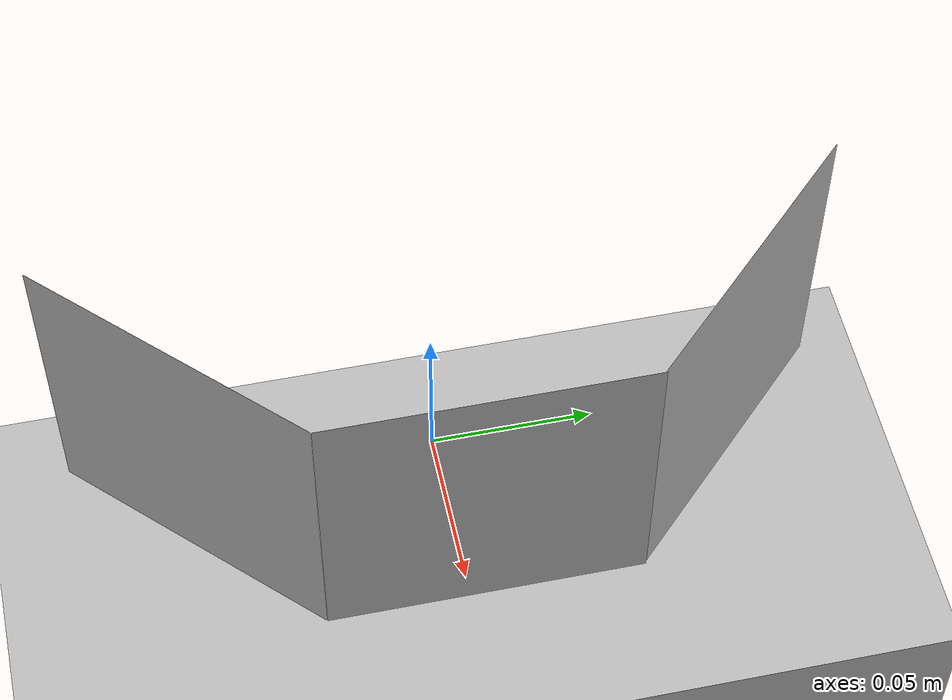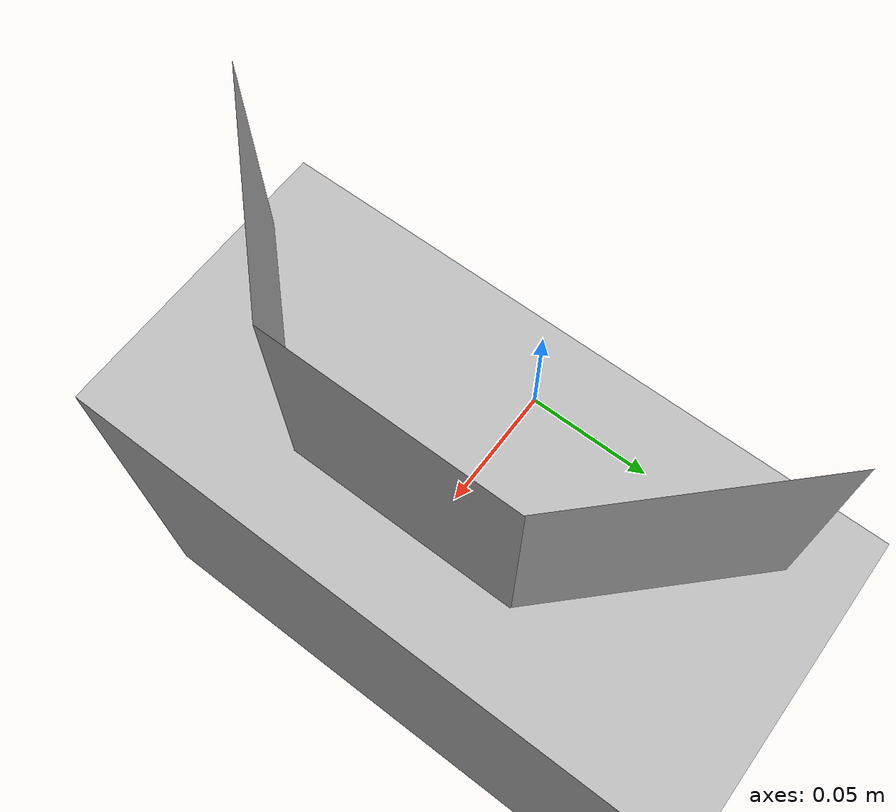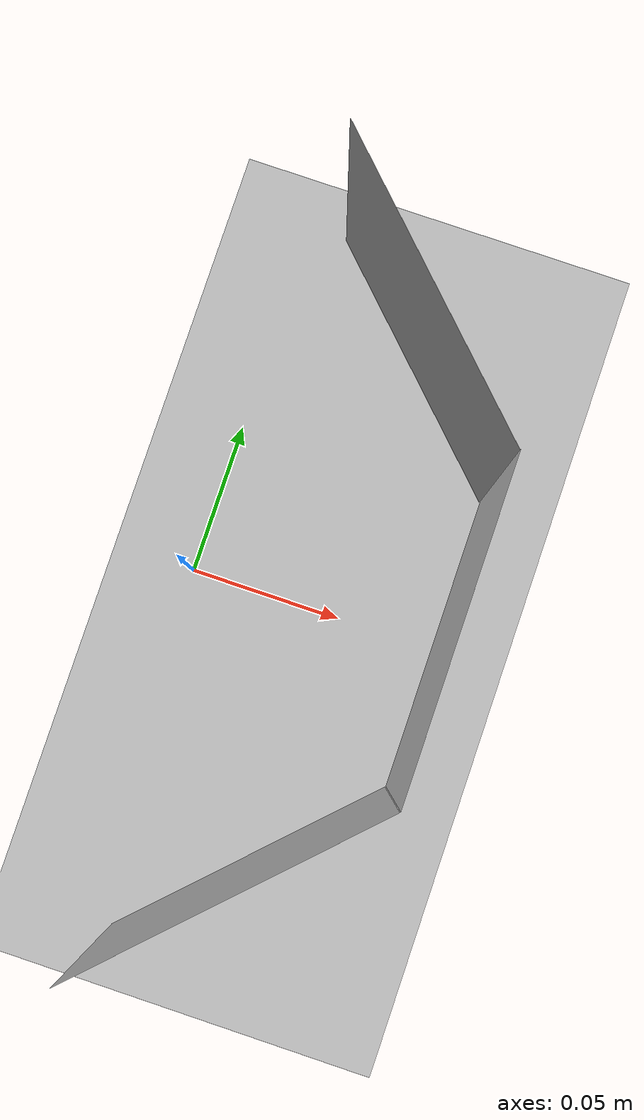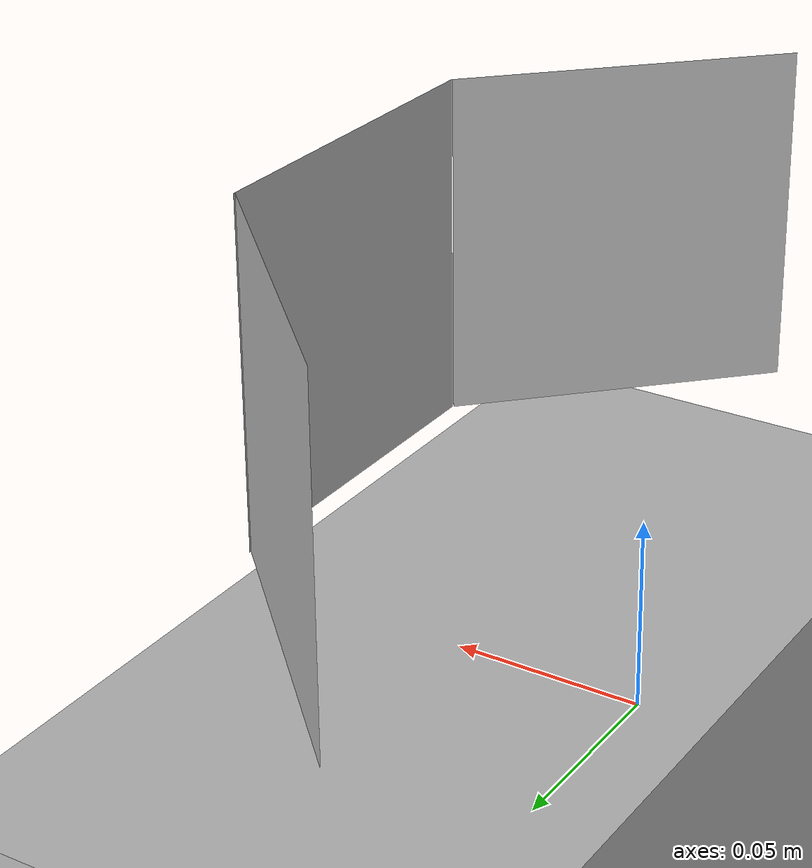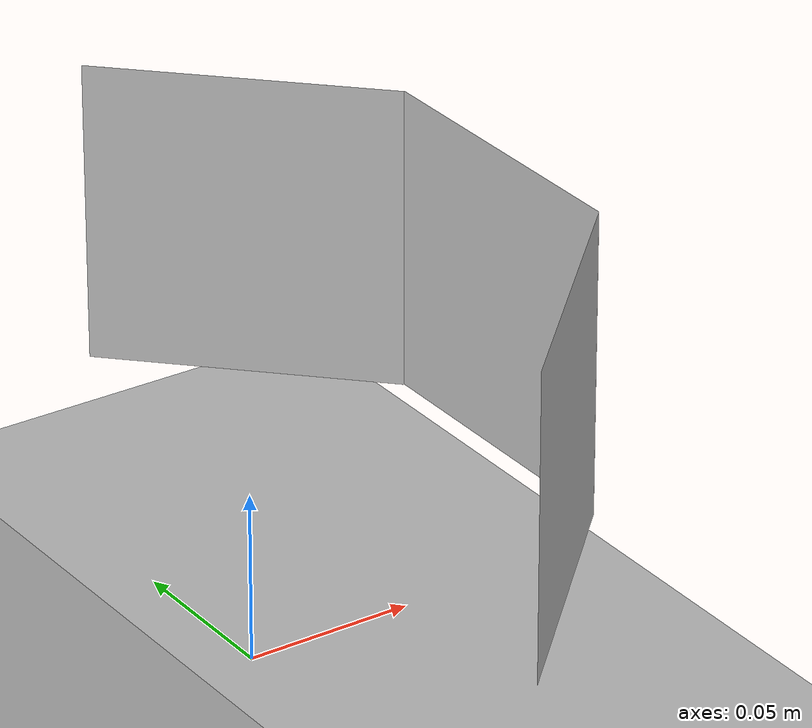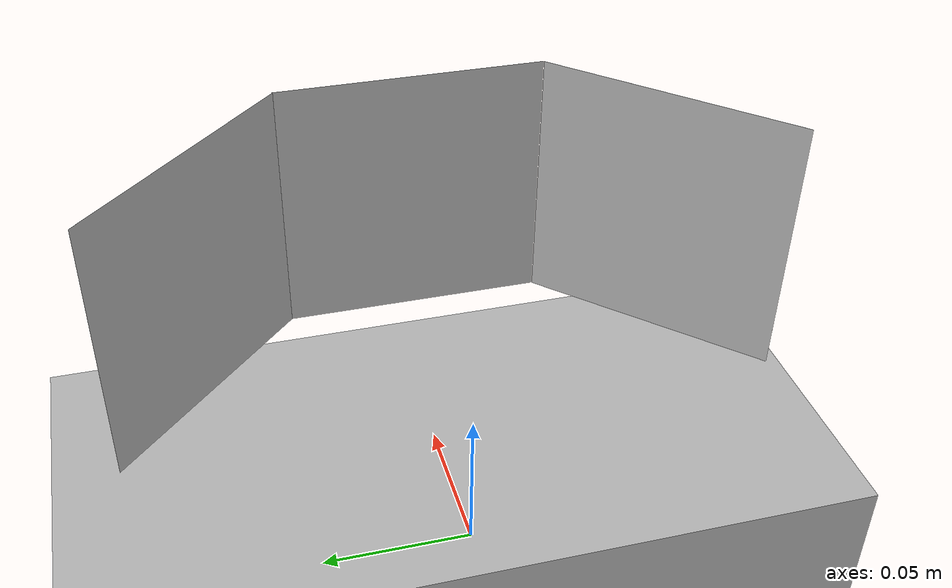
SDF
<sdf version="1.6">
 <world name="panda_pick_and_place">
  <include><uri>model://sun</uri></include>
  <include><uri>model://ground_plane</uri></include>
  <include><uri>model://table</uri><pose>0. 0. -0.09 0 0 0</pose><static>1</static></include>
  <include>
   <uri>model://ar_marker_1</uri>
   <pose>0.08 0.0 0.085 0 1.57079632679 0</pose>
   <static>1</static>
  </include>
  <include>
   <uri>model://ar_marker_2</uri>
   <pose>0.048 -0.077 0.085 0.785398 1.57079632679 0</pose>
   <static>1</static>
  </include>
  <include>
   <uri>model://ar_marker_3</uri>
   <pose>0.048 0.0765 0.085 -0.785398 1.57079632679 0</pose>
   <static>1</static>
  </include>
 </world>
</sdf>

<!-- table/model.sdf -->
<sdf version='1.6'>
  <model name='table'>
    <link name='link'>
      <pose>0 0 0 0 0 0</pose>
      <inertial>
        <pose>0 0 0 0 -0 0</pose>
        <mass>10</mass>
        <inertia>
          <ixx>0.166667</ixx>
          <ixy>0</ixy>
          <ixz>0</ixz>
          <iyy>0.166667</iyy>
          <iyz>0</iyz>
          <izz>0.166667</izz>
        </inertia>
      </inertial>
      <self_collide>0</self_collide>
      <enable_wind>0</enable_wind>
      <kinematic>0</kinematic>
      <visual name='visual'>
        <pose>0 0 0 0 -0 0</pose>
        <geometry>
          <box>
            <size>2.0 2.0 0.2</size>
          </box>
        </geometry>
        <pose>0 0 0 0 -0 0</pose>
        <transparency>0</transparency>
        <cast_shadows>1</cast_shadows>
      </visual>
      <collision name='collision'>
        <laser_retro>0</laser_retro>
        <max_contacts>10</max_contacts>
        <pose>0 0 0 0 -0 0</pose>
        <geometry>
          <box>
            <size>2.0 2.0 0.25</size>
          </box>
        </geometry>
        <surface>
          <friction>
            <ode>
              <mu>1</mu>
              <mu2>1</mu2>
              <fdir1>0 0 0</fdir1>
              <slip1>0</slip1>
              <slip2>0</slip2>
            </ode>
            <torsional>
              <coefficient>1</coefficient>
              <patch_radius>0</patch_radius>
              <surface_radius>0</surface_radius>
              <use_patch_radius>1</use_patch_radius>
              <ode>
                <slip>0</slip>
              </ode>
            </torsional>
          </friction>
          <bounce>
            <restitution_coefficient>0</restitution_coefficient>
            <threshold>1e+06</threshold>
          </bounce>
          <contact>
            <collide_without_contact>0</collide_without_contact>
            <collide_without_contact_bitmask>1</collide_without_contact_bitmask>
            <collide_bitmask>1</collide_bitmask>
            <ode>
              <soft_cfm>0</soft_cfm>
              <soft_erp>0.2</soft_erp>
              <kp>1e+13</kp>
              <kd>1</kd>
              <max_vel>0.01</max_vel>
              <min_depth>0</min_depth>
            </ode>
            <bullet>
              <split_impulse>1</split_impulse>
              <split_impulse_penetration_threshold>-0.01</split_impulse_penetration_threshold>
              <soft_cfm>0</soft_cfm>
              <soft_erp>0.2</soft_erp>
              <kp>1e+13</kp>
              <kd>1</kd>
            </bullet>
          </contact>
        </surface>
      </collision>
    </link>
    <static>1</static>
    <allow_auto_disable>1</allow_auto_disable>
  </model>
</sdf>

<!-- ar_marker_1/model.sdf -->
<sdf version='1.4'>
  <model name="ar_marker_1">
	<static>true</static>
	<link name="link">
		<visual name="visual">
			<pose>0 0 0 0 0 0</pose>
			<geometry>
			    <plane>
		                <normal>0 0 1</normal>
		                <size>0.09 0.09 0.001</size>
			    </plane>
			</geometry>
			<material>
				<script>
					<uri>model://ar_marker_1/materials/scripts</uri>
					<uri>model://ar_marker_1/materials/textures</uri>
					<name>ar_marker_1/image</name>
				</script>
			</material>
		</visual>
	</link>
  </model>
</sdf>

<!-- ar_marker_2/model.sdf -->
<sdf version='1.4'>
  <model name="ar_marker_2">
	<static>true</static>
	<link name="link">
		<visual name="visual">
			<pose>0 0 0 0 0 0</pose>
			<geometry>
			    <plane>
		                <normal>0 0 1</normal>
		                <size>0.09 0.09 0.001</size>
			    </plane>
			</geometry>
			<material>
				<script>
					<uri>model://ar_marker_2/materials/scripts</uri>
					<uri>model://ar_marker_2/materials/textures</uri>
					<name>ar_marker_2/image</name>
				</script>
			</material>
		</visual>
	</link>
  </model>
</sdf>

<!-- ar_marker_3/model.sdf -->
<sdf version='1.4'>
  <model name="ar_marker_3">
	<static>true</static>
	<link name="link">
		<visual name="visual">
			<pose>0 0 0 0 0 0</pose>
			<geometry>
			    <plane>
		                <normal>0 0 1</normal>
		                <size>0.09 0.09 0.001</size>
			    </plane>
			</geometry>
			<material>
				<script>
					<uri>model://ar_marker_3/materials/scripts</uri>
					<uri>model://ar_marker_3/materials/textures</uri>
					<name>ar_marker_3/image</name>
				</script>
			</material>
		</visual>
	</link>
  </model>
</sdf>
